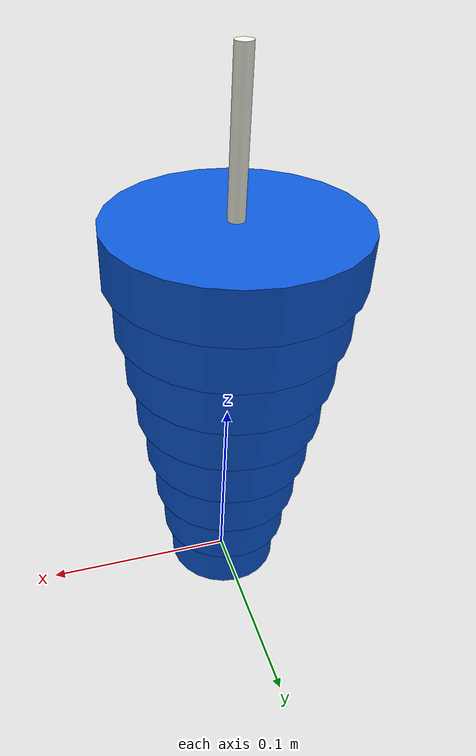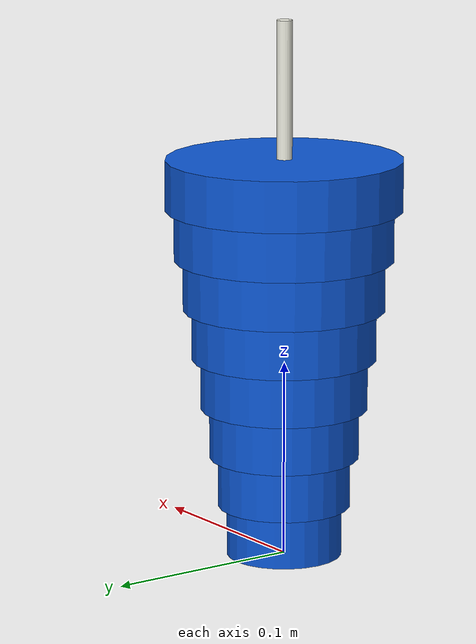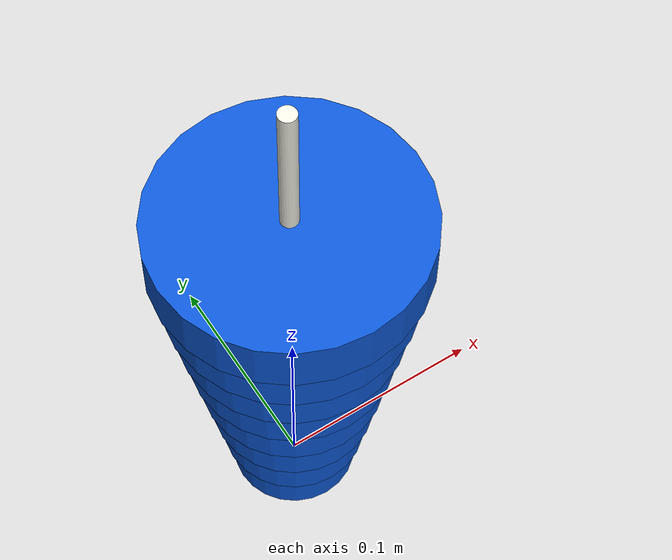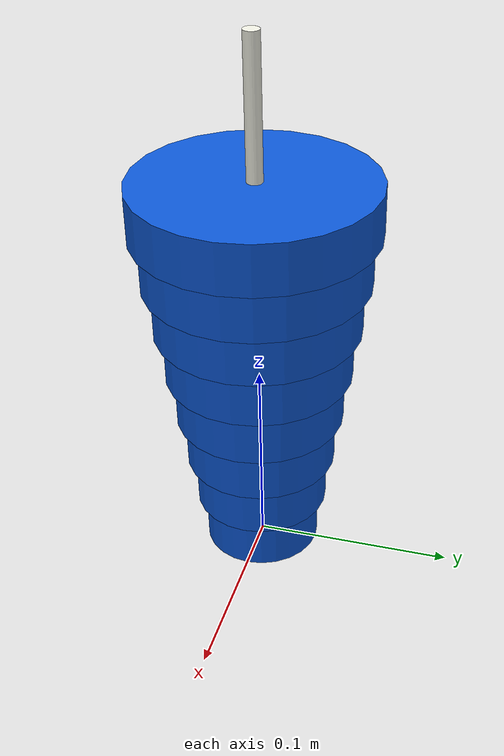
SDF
<?xml version="1.0"?>
<sdf version="1.9">
  <model name="pgi_staging_cup">
    <!-- Stage-5-only dynamic model.  The Stage-4 static model remains in
         models/pgi_staging_cup/model.sdf and is not changed by this file. -->
    <static>false</static>
    <self_collide>false</self_collide>
    <link name="cup_link">
      <inertial>
        <pose>0 0 0.129 0 0 0</pose>
        <mass>0.15</mass>
        <inertia>
          <ixx>0.00061906</ixx>
          <iyy>0.00061906</iyy>
          <izz>0.00018750</izz>
          <ixy>0</ixy><ixz>0</ixz><iyz>0</iyz>
        </inertia>
      </inertial>
      <velocity_decay><linear>0.01</linear><angular>0.01</angular></velocity_decay>

      <collision name="cup_band_1_collision"><pose>0 0 0.0128125 0 0 0</pose><geometry><cylinder><radius>0.029375</radius><length>0.025625</length></cylinder></geometry><surface><friction><ode><mu>1.2</mu><mu2>1.2</mu2></ode></friction><contact><ode><kp>100000</kp><kd>50</kd><max_vel>0.02</max_vel><min_depth>0.0002</min_depth></ode></contact></surface></collision>
      <collision name="cup_band_2_collision"><pose>0 0 0.0384375 0 0 0</pose><geometry><cylinder><radius>0.033750</radius><length>0.025625</length></cylinder></geometry><surface><friction><ode><mu>1.2</mu><mu2>1.2</mu2></ode></friction><contact><ode><kp>100000</kp><kd>50</kd><max_vel>0.02</max_vel><min_depth>0.0002</min_depth></ode></contact></surface></collision>
      <collision name="cup_band_3_collision"><pose>0 0 0.0640625 0 0 0</pose><geometry><cylinder><radius>0.038125</radius><length>0.025625</length></cylinder></geometry><surface><friction><ode><mu>1.2</mu><mu2>1.2</mu2></ode></friction><contact><ode><kp>100000</kp><kd>50</kd><max_vel>0.02</max_vel><min_depth>0.0002</min_depth></ode></contact></surface></collision>
      <collision name="cup_band_4_collision"><pose>0 0 0.0896875 0 0 0</pose><geometry><cylinder><radius>0.042500</radius><length>0.025625</length></cylinder></geometry><surface><friction><ode><mu>1.2</mu><mu2>1.2</mu2></ode></friction><contact><ode><kp>100000</kp><kd>50</kd><max_vel>0.02</max_vel><min_depth>0.0002</min_depth></ode></contact></surface></collision>
      <collision name="cup_band_5_collision"><pose>0 0 0.1153125 0 0 0</pose><geometry><cylinder><radius>0.046875</radius><length>0.025625</length></cylinder></geometry><surface><friction><ode><mu>1.2</mu><mu2>1.2</mu2></ode></friction><contact><ode><kp>100000</kp><kd>50</kd><max_vel>0.02</max_vel><min_depth>0.0002</min_depth></ode></contact></surface></collision>
      <collision name="cup_band_6_collision"><pose>0 0 0.1409375 0 0 0</pose><geometry><cylinder><radius>0.051250</radius><length>0.025625</length></cylinder></geometry><surface><friction><ode><mu>1.2</mu><mu2>1.2</mu2></ode></friction><contact><ode><kp>100000</kp><kd>50</kd><max_vel>0.02</max_vel><min_depth>0.0002</min_depth></ode></contact></surface></collision>
      <collision name="cup_band_7_collision"><pose>0 0 0.1665625 0 0 0</pose><geometry><cylinder><radius>0.055625</radius><length>0.025625</length></cylinder></geometry><surface><friction><ode><mu>1.2</mu><mu2>1.2</mu2></ode></friction><contact><ode><kp>100000</kp><kd>50</kd><max_vel>0.02</max_vel><min_depth>0.0002</min_depth></ode></contact></surface></collision>
      <collision name="cup_band_8_collision"><pose>0 0 0.1921875 0 0 0</pose><geometry><cylinder><radius>0.060000</radius><length>0.025625</length></cylinder></geometry><surface><friction><ode><mu>1.2</mu><mu2>1.2</mu2></ode></friction><contact><ode><kp>100000</kp><kd>50</kd><max_vel>0.02</max_vel><min_depth>0.0002</min_depth></ode></contact></surface></collision>

      <visual name="cup_band_1_visual"><pose>0 0 0.0128125 0 0 0</pose><geometry><cylinder><radius>0.029375</radius><length>0.025625</length></cylinder></geometry><material><ambient>0.05 0.35 0.85 1</ambient><diffuse>0.05 0.35 0.85 1</diffuse></material></visual>
      <visual name="cup_band_2_visual"><pose>0 0 0.0384375 0 0 0</pose><geometry><cylinder><radius>0.033750</radius><length>0.025625</length></cylinder></geometry><material><ambient>0.05 0.35 0.85 1</ambient><diffuse>0.05 0.35 0.85 1</diffuse></material></visual>
      <visual name="cup_band_3_visual"><pose>0 0 0.0640625 0 0 0</pose><geometry><cylinder><radius>0.038125</radius><length>0.025625</length></cylinder></geometry><material><ambient>0.05 0.35 0.85 1</ambient><diffuse>0.05 0.35 0.85 1</diffuse></material></visual>
      <visual name="cup_band_4_visual"><pose>0 0 0.0896875 0 0 0</pose><geometry><cylinder><radius>0.042500</radius><length>0.025625</length></cylinder></geometry><material><ambient>0.05 0.35 0.85 1</ambient><diffuse>0.05 0.35 0.85 1</diffuse></material></visual>
      <visual name="cup_band_5_visual"><pose>0 0 0.1153125 0 0 0</pose><geometry><cylinder><radius>0.046875</radius><length>0.025625</length></cylinder></geometry><material><ambient>0.05 0.35 0.85 1</ambient><diffuse>0.05 0.35 0.85 1</diffuse></material></visual>
      <visual name="cup_band_6_visual"><pose>0 0 0.1409375 0 0 0</pose><geometry><cylinder><radius>0.051250</radius><length>0.025625</length></cylinder></geometry><material><ambient>0.05 0.35 0.85 1</ambient><diffuse>0.05 0.35 0.85 1</diffuse></material></visual>
      <visual name="cup_band_7_visual"><pose>0 0 0.1665625 0 0 0</pose><geometry><cylinder><radius>0.055625</radius><length>0.025625</length></cylinder></geometry><material><ambient>0.05 0.35 0.85 1</ambient><diffuse>0.05 0.35 0.85 1</diffuse></material></visual>
      <visual name="cup_band_8_visual"><pose>0 0 0.1921875 0 0 0</pose><geometry><cylinder><radius>0.060000</radius><length>0.025625</length></cylinder></geometry><material><ambient>0.05 0.35 0.85 1</ambient><diffuse>0.05 0.35 0.85 1</diffuse></material></visual>

      <collision name="center_straw_collision"><pose>0 0 0.240 0 0 0</pose><geometry><cylinder><radius>0.004</radius><length>0.070</length></cylinder></geometry><surface><friction><ode><mu>0.6</mu><mu2>0.6</mu2></ode></friction></surface></collision>
      <visual name="center_straw_visual"><pose>0 0 0.240 0 0 0</pose><geometry><cylinder><radius>0.004</radius><length>0.070</length></cylinder></geometry><material><ambient>0.95 0.95 0.90 1</ambient><diffuse>0.95 0.95 0.90 1</diffuse></material></visual>
    </link>
    <frame name="grasp_band" attached_to="cup_link"><pose>0 0 0.040 0 0 0</pose></frame>
    <plugin filename="gz-sim-pose-publisher-system" name="gz::sim::systems::PosePublisher">
      <publish_model_pose>true</publish_model_pose>
      <publish_link_pose>false</publish_link_pose>
      <publish_collision_pose>false</publish_collision_pose>
      <publish_visual_pose>false</publish_visual_pose>
      <publish_nested_model_pose>false</publish_nested_model_pose>
      <use_pose_vector_msg>false</use_pose_vector_msg>
      <update_frequency>60</update_frequency>
    </plugin>
  </model>
</sdf>
